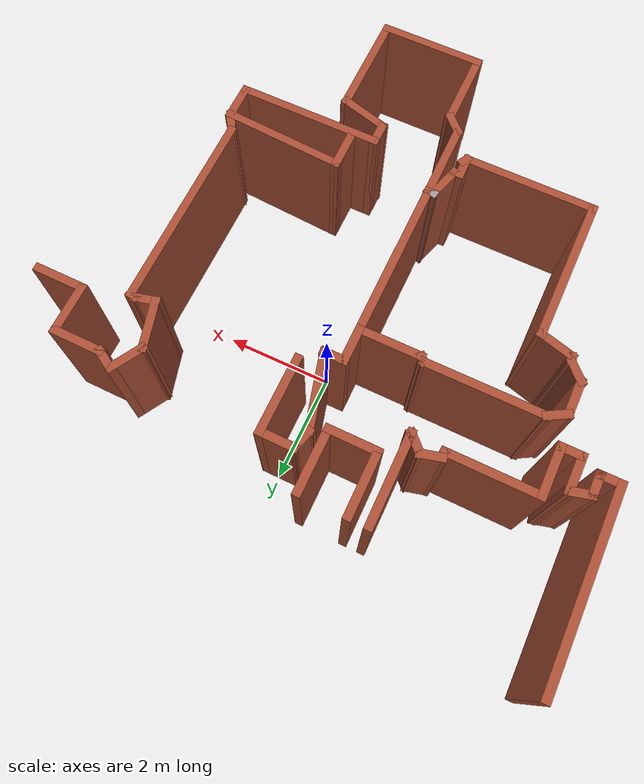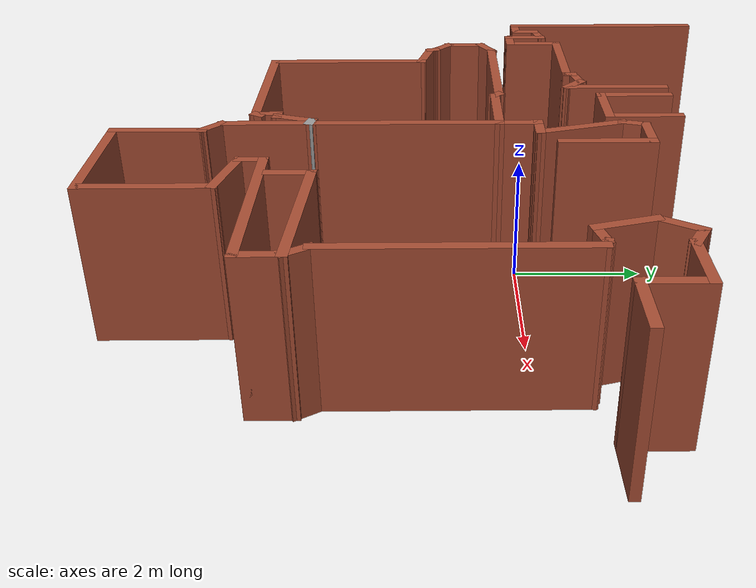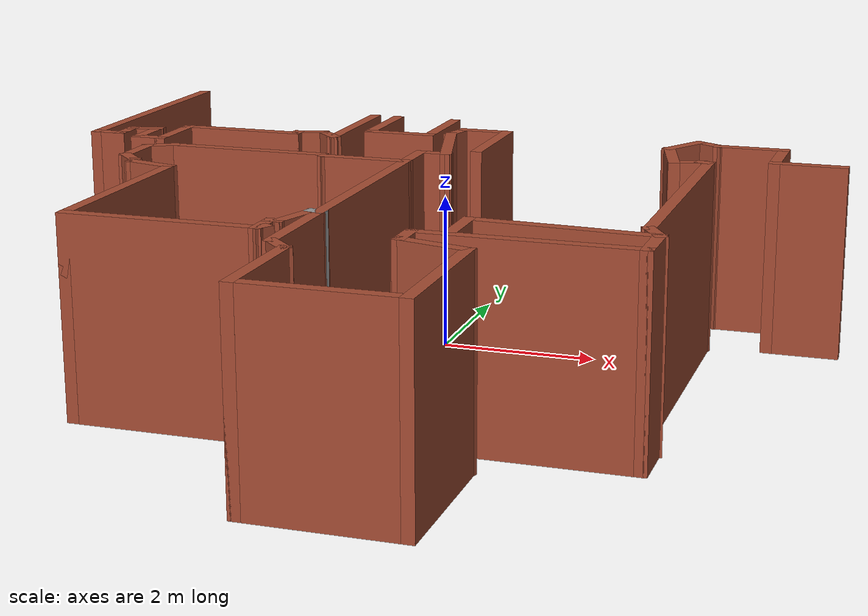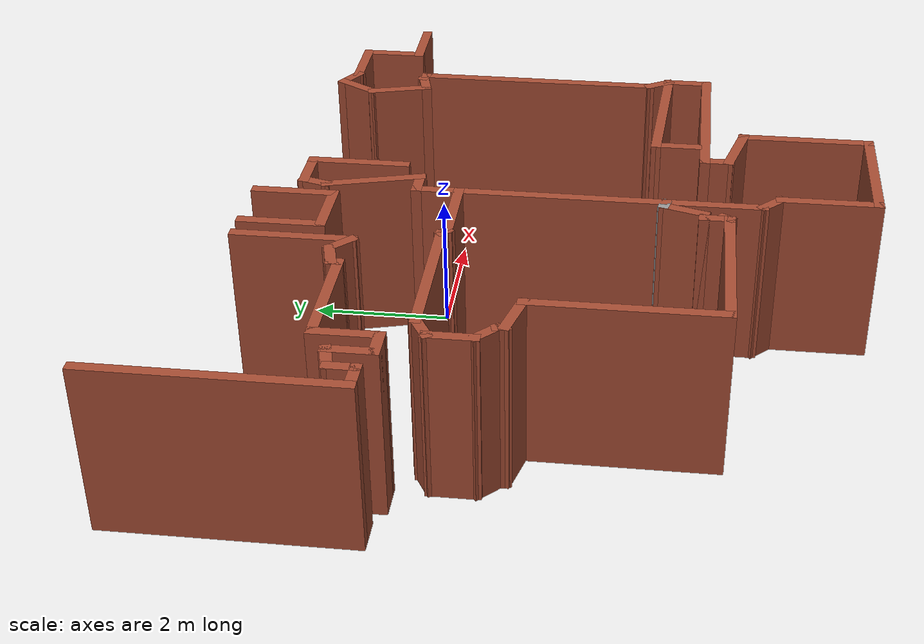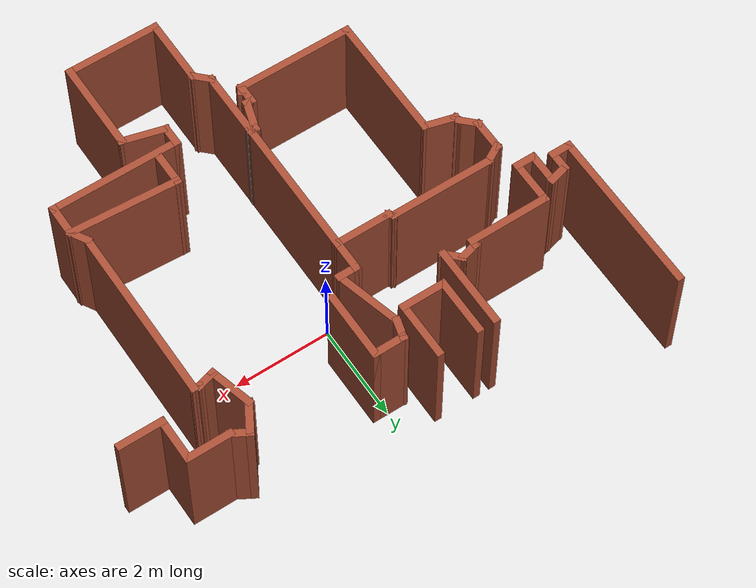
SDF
<sdf version="1.6">
 <model name="map_19">
  <pose>0.347283 1.65481 0 0 -0 0</pose>
  <link name="Wall_100">
   <collision name="Wall_100_Collision">
    <geometry><box><size>0.25 0.15 2.5</size></box></geometry>
    <pose>0 0 1.25 0 -0 0</pose>
   </collision>
   <visual name="Wall_100_Visual">
    <pose>0 0 1.25 0 -0 0</pose>
    <geometry><box><size>0.25 0.15 2.5</size></box></geometry>
    <material>
     <script><uri>file://media/materials/scripts/gazebo.material</uri><name>Gazebo/Grey</name></script>
     <ambient>1 1 1 1</ambient>
    </material>
    <meta><layer>0</layer></meta>
   </visual>
   <pose>-0.844355 -4.84999 0 0 -0 -0.261799</pose>
  </link>
  <link name="Wall_101">
   <collision name="Wall_101_Collision">
    <geometry><box><size>1.5 0.15 2.5</size></box></geometry>
    <pose>0 0 1.25 0 -0 0</pose>
   </collision>
   <visual name="Wall_101_Visual">
    <pose>0 0 1.25 0 -0 0</pose>
    <geometry><box><size>1.5 0.15 2.5</size></box></geometry>
    <material>
     <script><uri>file://media/materials/scripts/gazebo.material</uri><name>Gazebo/Bricks</name></script>
     <ambient>1 1 1 1</ambient>
    </material>
    <meta><layer>0</layer></meta>
   </visual>
   <pose>-0.796059 -5.53794 0 0 -0 -1.5708</pose>
  </link>
  <link name="Wall_102">
   <collision name="Wall_102_Collision">
    <geometry><box><size>0.5 0.15 2.5</size></box></geometry>
    <pose>0 0 1.25 0 -0 0</pose>
   </collision>
   <visual name="Wall_102_Visual">
    <pose>0 0 1.25 0 -0 0</pose>
    <geometry><box><size>0.5 0.15 2.5</size></box></geometry>
    <material>
     <script><uri>file://media/materials/scripts/gazebo.material</uri><name>Gazebo/Bricks</name></script>
     <ambient>1 1 1 1</ambient>
    </material>
    <meta><layer>0</layer></meta>
   </visual>
   <pose>-0.672315 -6.33668 0 0 -0 -0.785398</pose>
  </link>
  <link name="Wall_103">
   <collision name="Wall_103_Collision">
    <geometry><box><size>1.5 0.15 2.5</size></box></geometry>
    <pose>0 0 1.25 0 -0 0</pose>
   </collision>
   <visual name="Wall_103_Visual">
    <pose>0 0 1.25 0 -0 0</pose>
    <geometry><box><size>1.5 0.15 2.5</size></box></geometry>
    <material>
     <script><uri>file://media/materials/scripts/gazebo.material</uri><name>Gazebo/Bricks</name></script>
     <ambient>1 1 1 1</ambient>
    </material>
    <meta><layer>0</layer></meta>
   </visual>
   <pose>-0.548571 -7.13542 0 0 -0 -1.5708</pose>
  </link>
  <link name="Wall_106">
   <collision name="Wall_106_Collision">
    <geometry><box><size>2 0.15 2.5</size></box></geometry>
    <pose>0 0 1.25 0 -0 0</pose>
   </collision>
   <visual name="Wall_106_Visual">
    <pose>0 0 1.25 0 -0 0</pose>
    <geometry><box><size>2 0.15 2.5</size></box></geometry>
    <material>
     <script><uri>file://media/materials/scripts/gazebo.material</uri><name>Gazebo/Bricks</name></script>
     <ambient>1 1 1 1</ambient>
    </material>
    <meta><layer>0</layer></meta>
   </visual>
   <pose>0.376429 -7.81042 0 0 -0 0</pose>
  </link>
  <link name="Wall_107">
   <collision name="Wall_107_Collision">
    <geometry><box><size>2 0.15 2.5</size></box></geometry>
    <pose>0 0 1.25 0 -0 0</pose>
   </collision>
   <visual name="Wall_107_Visual">
    <pose>0 0 1.25 0 -0 0</pose>
    <geometry><box><size>2 0.15 2.5</size></box></geometry>
    <material>
     <script><uri>file://media/materials/scripts/gazebo.material</uri><name>Gazebo/Bricks</name></script>
     <ambient>1 1 1 1</ambient>
    </material>
    <meta><layer>0</layer></meta>
   </visual>
   <pose>1.30143 -6.88542 0 0 -0 1.5708</pose>
  </link>
  <link name="Wall_108">
   <collision name="Wall_108_Collision">
    <geometry><box><size>1 0.15 2.5</size></box></geometry>
    <pose>0 0 1.25 0 -0 0</pose>
   </collision>
   <visual name="Wall_108_Visual">
    <pose>0 0 1.25 0 -0 0</pose>
    <geometry><box><size>1 0.15 2.5</size></box></geometry>
    <material>
     <script><uri>file://media/materials/scripts/gazebo.material</uri><name>Gazebo/Bricks</name></script>
     <ambient>1 1 1 1</ambient>
    </material>
    <meta><layer>0</layer></meta>
   </visual>
   <pose>0.89091 -5.85042 0 0 -0 2.87979</pose>
  </link>
  <link name="Wall_109">
   <collision name="Wall_109_Collision">
    <geometry><box><size>0.5 0.15 2.5</size></box></geometry>
    <pose>0 0 1.25 0 -0 0</pose>
   </collision>
   <visual name="Wall_109_Visual">
    <pose>0 0 1.25 0 -0 0</pose>
    <geometry><box><size>0.5 0.15 2.5</size></box></geometry>
    <material>
     <script><uri>file://media/materials/scripts/gazebo.material</uri><name>Gazebo/Bricks</name></script>
     <ambient>1 1 1 1</ambient>
    </material>
    <meta><layer>0</layer></meta>
   </visual>
   <pose>0.480392 -5.56543 0 0 -0 1.5708</pose>
  </link>
  <link name="Wall_110">
   <collision name="Wall_110_Collision">
    <geometry><box><size>2.75 0.15 2.5</size></box></geometry>
    <pose>0 0 1.25 0 -0 0</pose>
   </collision>
   <visual name="Wall_110_Visual">
    <pose>0 0 1.25 0 -0 0</pose>
    <geometry><box><size>2.75 0.15 2.5</size></box></geometry>
    <material>
     <script><uri>file://media/materials/scripts/gazebo.material</uri><name>Gazebo/Bricks</name></script>
     <ambient>1 1 1 1</ambient>
    </material>
    <meta><layer>0</layer></meta>
   </visual>
   <pose>1.78039 -5.39043 0 0 -0 0</pose>
  </link>
  <link name="Wall_113">
   <collision name="Wall_113_Collision">
    <geometry><box><size>0.75 0.15 2.5</size></box></geometry>
    <pose>0 0 1.25 0 -0 0</pose>
   </collision>
   <visual name="Wall_113_Visual">
    <pose>0 0 1.25 0 -0 0</pose>
    <geometry><box><size>0.75 0.15 2.5</size></box></geometry>
    <material>
     <script><uri>file://media/materials/scripts/gazebo.material</uri><name>Gazebo/Bricks</name></script>
     <ambient>1 1 1 1</ambient>
    </material>
    <meta><layer>0</layer></meta>
   </visual>
   <pose>3.08039 -5.09043 0 0 -0 1.5708</pose>
  </link>
  <link name="Wall_114">
   <collision name="Wall_114_Collision">
    <geometry><box><size>0.5 0.15 2.5</size></box></geometry>
    <pose>0 0 1.25 0 -0 0</pose>
   </collision>
   <visual name="Wall_114_Visual">
    <pose>0 0 1.25 0 -0 0</pose>
    <geometry><box><size>0.5 0.15 2.5</size></box></geometry>
    <material>
     <script><uri>file://media/materials/scripts/gazebo.material</uri><name>Gazebo/Bricks</name></script>
     <ambient>1 1 1 1</ambient>
    </material>
    <meta><layer>0</layer></meta>
   </visual>
   <pose>2.99289 -4.63887 0 0 -0 2.0944</pose>
  </link>
  <link name="Wall_115">
   <collision name="Wall_115_Collision">
    <geometry><box><size>3.75 0.15 2.5</size></box></geometry>
    <pose>0 0 1.25 0 -0 0</pose>
   </collision>
   <visual name="Wall_115_Visual">
    <pose>0 0 1.25 0 -0 0</pose>
    <geometry><box><size>3.75 0.15 2.5</size></box></geometry>
    <material>
     <script><uri>file://media/materials/scripts/gazebo.material</uri><name>Gazebo/Bricks</name></script>
     <ambient>1 1 1 1</ambient>
    </material>
    <meta><layer>0</layer></meta>
   </visual>
   <pose>2.90539 -2.68732 0 0 -0 1.5708</pose>
  </link>
  <link name="Wall_116">
   <collision name="Wall_116_Collision">
    <geometry><box><size>0.25 0.15 2.5</size></box></geometry>
    <pose>0 0 1.25 0 -0 0</pose>
   </collision>
   <visual name="Wall_116_Visual">
    <pose>0 0 1.25 0 -0 0</pose>
    <geometry><box><size>0.25 0.15 2.5</size></box></geometry>
    <material>
     <script><uri>file://media/materials/scripts/gazebo.material</uri><name>Gazebo/Bricks</name></script>
     <ambient>1 1 1 1</ambient>
    </material>
    <meta><layer>0</layer></meta>
   </visual>
   <pose>2.8571 -0.874376 0 0 -0 2.87979</pose>
  </link>
  <link name="Wall_117">
   <collision name="Wall_117_Collision">
    <geometry><box><size>0.5 0.15 2.5</size></box></geometry>
    <pose>0 0 1.25 0 -0 0</pose>
   </collision>
   <visual name="Wall_117_Visual">
    <pose>0 0 1.25 0 -0 0</pose>
    <geometry><box><size>0.5 0.15 2.5</size></box></geometry>
    <material>
     <script><uri>file://media/materials/scripts/gazebo.material</uri><name>Gazebo/Bricks</name></script>
     <ambient>1 1 1 1</ambient>
    </material>
    <meta><layer>0</layer></meta>
   </visual>
   <pose>2.63976 -0.906728 0 0 -0 -2.87979</pose>
  </link>
  <link name="Wall_118">
   <collision name="Wall_118_Collision">
    <geometry><box><size>1 0.15 2.5</size></box></geometry>
    <pose>0 0 1.25 0 -0 0</pose>
   </collision>
   <visual name="Wall_118_Visual">
    <pose>0 0 1.25 0 -0 0</pose>
    <geometry><box><size>1 0.15 2.5</size></box></geometry>
    <material>
     <script><uri>file://media/materials/scripts/gazebo.material</uri><name>Gazebo/Bricks</name></script>
     <ambient>1 1 1 1</ambient>
    </material>
    <meta><layer>0</layer></meta>
   </visual>
   <pose>2.36073 -0.541503 0 0 -0 1.8326</pose>
  </link>
  <link name="Wall_119">
   <collision name="Wall_119_Collision">
    <geometry><box><size>0.75 0.15 2.5</size></box></geometry>
    <pose>0 0 1.25 0 -0 0</pose>
   </collision>
   <visual name="Wall_119_Visual">
    <pose>0 0 1.25 0 -0 0</pose>
    <geometry><box><size>0.75 0.15 2.5</size></box></geometry>
    <material>
     <script><uri>file://media/materials/scripts/gazebo.material</uri><name>Gazebo/Bricks</name></script>
     <ambient>1 1 1 1</ambient>
    </material>
    <meta><layer>0</layer></meta>
   </visual>
   <pose>2.40073 0.128823 0 0 -0 1.0472</pose>
  </link>
  <link name="Wall_120">
   <collision name="Wall_120_Collision">
    <geometry><box><size>0.5 0.15 2.5</size></box></geometry>
    <pose>0 0 1.25 0 -0 0</pose>
   </collision>
   <visual name="Wall_120_Visual">
    <pose>0 0 1.25 0 -0 0</pose>
    <geometry><box><size>0.5 0.15 2.5</size></box></geometry>
    <material>
     <script><uri>file://media/materials/scripts/gazebo.material</uri><name>Gazebo/Bricks</name></script>
     <ambient>1 1 1 1</ambient>
    </material>
    <meta><layer>0</layer></meta>
   </visual>
   <pose>2.70228 0.301131 0 0 -0 -0.523599</pose>
  </link>
  <link name="Wall_123">
   <collision name="Wall_123_Collision">
    <geometry><box><size>1 0.15 2.5</size></box></geometry>
    <pose>0 0 1.25 0 -0 0</pose>
   </collision>
   <visual name="Wall_123_Visual">
    <pose>0 0 1.25 0 -0 0</pose>
    <geometry><box><size>1 0.15 2.5</size></box></geometry>
    <material>
     <script><uri>file://media/materials/scripts/gazebo.material</uri><name>Gazebo/Bricks</name></script>
     <ambient>1 1 1 1</ambient>
    </material>
    <meta><layer>0</layer></meta>
   </visual>
   <pose>3.27884 0.213631 0 0 -0 0</pose>
  </link>
  <link name="Wall_124">
   <collision name="Wall_124_Collision">
    <geometry><box><size>1 0.15 2.5</size></box></geometry>
    <pose>0 0 1.25 0 -0 0</pose>
   </collision>
   <visual name="Wall_124_Visual">
    <pose>0 0 1.25 0 -0 0</pose>
    <geometry><box><size>1 0.15 2.5</size></box></geometry>
    <material>
     <script><uri>file://media/materials/scripts/gazebo.material</uri><name>Gazebo/Bricks</name></script>
     <ambient>1 1 1 1</ambient>
    </material>
    <meta><layer>0</layer></meta>
   </visual>
   <pose>3.70384 -0.21137 0 0 -0 -1.5708</pose>
  </link>
  <link name="Wall_125">
   <collision name="Wall_125_Collision">
    <geometry><box><size>1 0.15 2.5</size></box></geometry>
    <pose>0 0 1.25 0 -0 0</pose>
   </collision>
   <visual name="Wall_125_Visual">
    <pose>0 0 1.25 0 -0 0</pose>
    <geometry><box><size>1 0.15 2.5</size></box></geometry>
    <material>
     <script><uri>file://media/materials/scripts/gazebo.material</uri><name>Gazebo/Bricks</name></script>
     <ambient>1 1 1 1</ambient>
    </material>
    <meta><layer>0</layer></meta>
   </visual>
   <pose>4.12884 -0.636369 0 0 -0 0</pose>
  </link>
  <link name="Wall_176">
   <collision name="Wall_176_Collision">
    <geometry><box><size>0.75 0.15 2.5</size></box></geometry>
    <pose>0 0 1.25 0 -0 0</pose>
   </collision>
   <visual name="Wall_176_Visual">
    <pose>0 0 1.25 0 -0 0</pose>
    <geometry><box><size>0.75 0.15 2.5</size></box></geometry>
    <material>
     <script><uri>file://media/materials/scripts/gazebo.material</uri><name>Gazebo/Bricks</name></script>
     <ambient>1 1 1 1</ambient>
    </material>
    <meta><layer>0</layer></meta>
   </visual>
   <pose>-0.400572 0.301042 0 0 -0 0</pose>
  </link>
  <link name="Wall_177">
   <collision name="Wall_177_Collision">
    <geometry><box><size>1.5 0.15 2.5</size></box></geometry>
    <pose>0 0 1.25 0 -0 0</pose>
   </collision>
   <visual name="Wall_177_Visual">
    <pose>0 0 1.25 0 -0 0</pose>
    <geometry><box><size>1.5 0.15 2.5</size></box></geometry>
    <material>
     <script><uri>file://media/materials/scripts/gazebo.material</uri><name>Gazebo/Bricks</name></script>
     <ambient>1 1 1 1</ambient>
    </material>
    <meta><layer>0</layer></meta>
   </visual>
   <pose>-0.100572 -0.373958 0 0 -0 -1.5708</pose>
  </link>
  <link name="Wall_179">
   <collision name="Wall_179_Collision">
    <geometry><box><size>0.75 0.15 2.5</size></box></geometry>
    <pose>0 0 1.25 0 -0 0</pose>
   </collision>
   <visual name="Wall_179_Visual">
    <pose>0 0 1.25 0 -0 0</pose>
    <geometry><box><size>0.75 0.15 2.5</size></box></geometry>
    <material>
     <script><uri>file://media/materials/scripts/gazebo.material</uri><name>Gazebo/Bricks</name></script>
     <ambient>1 1 1 1</ambient>
    </material>
    <meta><layer>0</layer></meta>
   </visual>
   <pose>0.904686 -4.96508 0 0 -0 -1.5708</pose>
  </link>
  <link name="Wall_182">
   <collision name="Wall_182_Collision">
    <geometry><box><size>2.32931 0.15 2.5</size></box></geometry>
    <pose>0 0 1.25 0 -0 0</pose>
   </collision>
   <visual name="Wall_182_Visual">
    <pose>0 0 1.25 0 -0 0</pose>
    <geometry><box><size>2.32931 0.15 2.5</size></box></geometry>
    <material>
     <script><uri>file://media/materials/scripts/gazebo.material</uri><name>Gazebo/Bricks</name></script>
     <ambient>1 1 1 1</ambient>
    </material>
    <meta><layer>0</layer></meta>
   </visual>
   <pose>1.99254 -4.72775 0 0 -0 -0.057547</pose>
  </link>
  <link name="Wall_184">
   <collision name="Wall_184_Collision">
    <geometry><box><size>3.07191 0.15 2.5</size></box></geometry>
    <pose>0 0 1.25 0 -0 0</pose>
   </collision>
   <visual name="Wall_184_Visual">
    <pose>0 0 1.25 0 -0 0</pose>
    <geometry><box><size>3.07191 0.15 2.5</size></box></geometry>
    <material>
     <script><uri>file://media/materials/scripts/gazebo.material</uri><name>Gazebo/Bricks</name></script>
     <ambient>1 1 1 1</ambient>
    </material>
    <meta><layer>0</layer></meta>
   </visual>
   <pose>-0.793906 -3.40198 0 0 -0 -1.57227</pose>
  </link>
  <link name="Wall_35">
   <collision name="Wall_35_Collision">
    <geometry><box><size>3.5 0.15 2.5</size></box></geometry>
    <pose>0 0 1.25 0 -0 0</pose>
   </collision>
   <visual name="Wall_35_Visual">
    <pose>0 0 1.25 0 -0 0</pose>
    <geometry><box><size>3.5 0.15 2.5</size></box></geometry>
    <material>
     <script><uri>file://media/materials/scripts/gazebo.material</uri><name>Gazebo/Bricks</name></script>
     <ambient>1 1 1 1</ambient>
    </material>
    <meta><layer>0</layer></meta>
   </visual>
   <pose>-5.47421 0.342356 0 0 -0 -1.5708</pose>
  </link>
  <link name="Wall_36">
   <collision name="Wall_36_Collision">
    <geometry><box><size>0.5 0.15 2.5</size></box></geometry>
    <pose>0 0 1.25 0 -0 0</pose>
   </collision>
   <visual name="Wall_36_Visual">
    <pose>0 0 1.25 0 -0 0</pose>
    <geometry><box><size>0.5 0.15 2.5</size></box></geometry>
    <material>
     <script><uri>file://media/materials/scripts/gazebo.material</uri><name>Gazebo/Bricks</name></script>
     <ambient>1 1 1 1</ambient>
    </material>
    <meta><layer>0</layer></meta>
   </visual>
   <pose>-5.29921 -1.33264 0 0 -0 0</pose>
  </link>
  <link name="Wall_37">
   <collision name="Wall_37_Collision">
    <geometry><box><size>0.5 0.15 2.5</size></box></geometry>
    <pose>0 0 1.25 0 -0 0</pose>
   </collision>
   <visual name="Wall_37_Visual">
    <pose>0 0 1.25 0 -0 0</pose>
    <geometry><box><size>0.5 0.15 2.5</size></box></geometry>
    <material>
     <script><uri>file://media/materials/scripts/gazebo.material</uri><name>Gazebo/Bricks</name></script>
     <ambient>1 1 1 1</ambient>
    </material>
    <meta><layer>0</layer></meta>
   </visual>
   <pose>-5.12421 -1.15764 0 0 -0 1.5708</pose>
  </link>
  <link name="Wall_42">
   <collision name="Wall_42_Collision">
    <geometry><box><size>0.5 0.15 2.5</size></box></geometry>
    <pose>0 0 1.25 0 -0 0</pose>
   </collision>
   <visual name="Wall_42_Visual">
    <pose>0 0 1.25 0 -0 0</pose>
    <geometry><box><size>0.5 0.15 2.5</size></box></geometry>
    <material>
     <script><uri>file://media/materials/scripts/gazebo.material</uri><name>Gazebo/Bricks</name></script>
     <ambient>1 1 1 1</ambient>
    </material>
    <meta><layer>0</layer></meta>
   </visual>
   <pose>-4.95517 -0.93735 0 0 -0 0.261799</pose>
  </link>
  <link name="Wall_43">
   <collision name="Wall_43_Collision">
    <geometry><box><size>0.75 0.15 2.5</size></box></geometry>
    <pose>0 0 1.25 0 -0 0</pose>
   </collision>
   <visual name="Wall_43_Visual">
    <pose>0 0 1.25 0 -0 0</pose>
    <geometry><box><size>0.75 0.15 2.5</size></box></geometry>
    <material>
     <script><uri>file://media/materials/scripts/gazebo.material</uri><name>Gazebo/Bricks</name></script>
     <ambient>1 1 1 1</ambient>
    </material>
    <meta><layer>0</layer></meta>
   </visual>
   <pose>-4.78613 -1.19206 0 0 -0 -1.5708</pose>
  </link>
  <link name="Wall_44">
   <collision name="Wall_44_Collision">
    <geometry><box><size>0.5 0.15 2.5</size></box></geometry>
    <pose>0 0 1.25 0 -0 0</pose>
   </collision>
   <visual name="Wall_44_Visual">
    <pose>0 0 1.25 0 -0 0</pose>
    <geometry><box><size>0.5 0.15 2.5</size></box></geometry>
    <material>
     <script><uri>file://media/materials/scripts/gazebo.material</uri><name>Gazebo/Bricks</name></script>
     <ambient>1 1 1 1</ambient>
    </material>
    <meta><layer>0</layer></meta>
   </visual>
   <pose>-4.61113 -1.49206 0 0 -0 0</pose>
  </link>
  <link name="Wall_45">
   <collision name="Wall_45_Collision">
    <geometry><box><size>1 0.15 2.5</size></box></geometry>
    <pose>0 0 1.25 0 -0 0</pose>
   </collision>
   <visual name="Wall_45_Visual">
    <pose>0 0 1.25 0 -0 0</pose>
    <geometry><box><size>1 0.15 2.5</size></box></geometry>
    <material>
     <script><uri>file://media/materials/scripts/gazebo.material</uri><name>Gazebo/Bricks</name></script>
     <ambient>1 1 1 1</ambient>
    </material>
    <meta><layer>0</layer></meta>
   </visual>
   <pose>-4.43613 -1.06706 0 0 -0 1.5708</pose>
  </link>
  <link name="Wall_52">
   <collision name="Wall_52_Collision">
    <geometry><box><size>1.75 0.15 2.5</size></box></geometry>
    <pose>0 0 1.25 0 -0 0</pose>
   </collision>
   <visual name="Wall_52_Visual">
    <pose>0 0 1.25 0 -0 0</pose>
    <geometry><box><size>1.75 0.15 2.5</size></box></geometry>
    <material>
     <script><uri>file://media/materials/scripts/gazebo.material</uri><name>Gazebo/Bricks</name></script>
     <ambient>1 1 1 1</ambient>
    </material>
    <meta><layer>0</layer></meta>
   </visual>
   <pose>-3.63613 -0.642057 0 0 -0 0</pose>
  </link>
  <link name="Wall_53">
   <collision name="Wall_53_Collision">
    <geometry><box><size>0.25 0.15 2.5</size></box></geometry>
    <pose>0 0 1.25 0 -0 0</pose>
   </collision>
   <visual name="Wall_53_Visual">
    <pose>0 0 1.25 0 -0 0</pose>
    <geometry><box><size>0.25 0.15 2.5</size></box></geometry>
    <material>
     <script><uri>file://media/materials/scripts/gazebo.material</uri><name>Gazebo/Bricks</name></script>
     <ambient>1 1 1 1</ambient>
    </material>
    <meta><layer>0</layer></meta>
   </visual>
   <pose>-2.83613 -0.592057 0 0 -0 1.5708</pose>
  </link>
  <link name="Wall_54">
   <collision name="Wall_54_Collision">
    <geometry><box><size>0.5 0.15 2.5</size></box></geometry>
    <pose>0 0 1.25 0 -0 0</pose>
   </collision>
   <visual name="Wall_54_Visual">
    <pose>0 0 1.25 0 -0 0</pose>
    <geometry><box><size>0.5 0.15 2.5</size></box></geometry>
    <material>
     <script><uri>file://media/materials/scripts/gazebo.material</uri><name>Gazebo/Bricks</name></script>
     <ambient>1 1 1 1</ambient>
    </material>
    <meta><layer>0</layer></meta>
   </visual>
   <pose>-2.6671 -0.496764 0 0 -0 0.261799</pose>
  </link>
  <link name="Wall_55">
   <collision name="Wall_55_Collision">
    <geometry><box><size>0.5 0.15 2.5</size></box></geometry>
    <pose>0 0 1.25 0 -0 0</pose>
   </collision>
   <visual name="Wall_55_Visual">
    <pose>0 0 1.25 0 -0 0</pose>
    <geometry><box><size>0.5 0.15 2.5</size></box></geometry>
    <material>
     <script><uri>file://media/materials/scripts/gazebo.material</uri><name>Gazebo/Bricks</name></script>
     <ambient>1 1 1 1</ambient>
    </material>
    <meta><layer>0</layer></meta>
   </visual>
   <pose>-2.37432 -0.575214 0 0 -0 -0.785398</pose>
  </link>
  <link name="Wall_56">
   <collision name="Wall_56_Collision">
    <geometry><box><size>1.75 0.15 2.5</size></box></geometry>
    <pose>0 0 1.25 0 -0 0</pose>
   </collision>
   <visual name="Wall_56_Visual">
    <pose>0 0 1.25 0 -0 0</pose>
    <geometry><box><size>1.75 0.15 2.5</size></box></geometry>
    <material>
     <script><uri>file://media/materials/scripts/gazebo.material</uri><name>Gazebo/Bricks</name></script>
     <ambient>1 1 1 1</ambient>
    </material>
    <meta><layer>0</layer></meta>
   </visual>
   <pose>-2.25057 0.101042 0 0 -0 1.5708</pose>
  </link>
  <link name="Wall_58">
   <collision name="Wall_58_Collision">
    <geometry><box><size>1.25 0.15 2.5</size></box></geometry>
    <pose>0 0 1.25 0 -0 0</pose>
   </collision>
   <visual name="Wall_58_Visual">
    <pose>0 0 1.25 0 -0 0</pose>
    <geometry><box><size>1.25 0.15 2.5</size></box></geometry>
    <material>
     <script><uri>file://media/materials/scripts/gazebo.material</uri><name>Gazebo/Bricks</name></script>
     <ambient>1 1 1 1</ambient>
    </material>
    <meta><layer>0</layer></meta>
   </visual>
   <pose>-1.90057 0.351043 0 0 -0 -1.5708</pose>
  </link>
  <link name="Wall_59">
   <collision name="Wall_59_Collision">
    <geometry><box><size>1 0.15 2.5</size></box></geometry>
    <pose>0 0 1.25 0 -0 0</pose>
   </collision>
   <visual name="Wall_59_Visual">
    <pose>0 0 1.25 0 -0 0</pose>
    <geometry><box><size>1 0.15 2.5</size></box></geometry>
    <material>
     <script><uri>file://media/materials/scripts/gazebo.material</uri><name>Gazebo/Bricks</name></script>
     <ambient>1 1 1 1</ambient>
    </material>
    <meta><layer>0</layer></meta>
   </visual>
   <pose>-1.47557 -0.198958 0 0 -0 0</pose>
  </link>
  <link name="Wall_63">
   <collision name="Wall_63_Collision">
    <geometry><box><size>1.25 0.15 2.5</size></box></geometry>
    <pose>0 0 1.25 0 -0 0</pose>
   </collision>
   <visual name="Wall_63_Visual">
    <pose>0 0 1.25 0 -0 0</pose>
    <geometry><box><size>1.25 0.15 2.5</size></box></geometry>
    <material>
     <script><uri>file://media/materials/scripts/gazebo.material</uri><name>Gazebo/Bricks</name></script>
     <ambient>1 1 1 1</ambient>
    </material>
    <meta><layer>0</layer></meta>
   </visual>
   <pose>-1.05057 0.351043 0 0 -0 1.5708</pose>
  </link>
  <link name="Wall_73">
   <collision name="Wall_73_Collision">
    <geometry><box><size>0.5 0.15 2.5</size></box></geometry>
    <pose>0 0 1.25 0 -0 0</pose>
   </collision>
   <visual name="Wall_73_Visual">
    <pose>0 0 1.25 0 -0 0</pose>
    <geometry><box><size>0.5 0.15 2.5</size></box></geometry>
    <material>
     <script><uri>file://media/materials/scripts/gazebo.material</uri><name>Gazebo/Bricks</name></script>
     <ambient>1 1 1 1</ambient>
    </material>
    <meta><layer>0</layer></meta>
   </visual>
   <pose>-0.745865 0.132005 0 0 -0 -1.8326</pose>
  </link>
  <link name="Wall_80">
   <collision name="Wall_80_Collision">
    <geometry><box><size>1.5 0.15 2.5</size></box></geometry>
    <pose>0 0 1.25 0 -0 0</pose>
   </collision>
   <visual name="Wall_80_Visual">
    <pose>0 0 1.25 0 -0 0</pose>
    <geometry><box><size>1.5 0.15 2.5</size></box></geometry>
    <material>
     <script><uri>file://media/materials/scripts/gazebo.material</uri><name>Gazebo/Bricks</name></script>
     <ambient>1 1 1 1</ambient>
    </material>
    <meta><layer>0</layer></meta>
   </visual>
   <pose>-0.616456 -0.689032 0 0 -0 -1.309</pose>
  </link>
  <link name="Wall_81">
   <collision name="Wall_81_Collision">
    <geometry><box><size>0.5 0.15 2.5</size></box></geometry>
    <pose>0 0 1.25 0 -0 0</pose>
   </collision>
   <visual name="Wall_81_Visual">
    <pose>0 0 1.25 0 -0 0</pose>
    <geometry><box><size>0.5 0.15 2.5</size></box></geometry>
    <material>
     <script><uri>file://media/materials/scripts/gazebo.material</uri><name>Gazebo/Bricks</name></script>
     <ambient>1 1 1 1</ambient>
    </material>
    <meta><layer>0</layer></meta>
   </visual>
   <pose>-0.616753 -1.34103 0 0 -0 3.14159</pose>
  </link>
  <link name="Wall_82">
   <collision name="Wall_82_Collision">
    <geometry><box><size>0.75 0.15 2.5</size></box></geometry>
    <pose>0 0 1.25 0 -0 0</pose>
   </collision>
   <visual name="Wall_82_Visual">
    <pose>0 0 1.25 0 -0 0</pose>
    <geometry><box><size>0.75 0.15 2.5</size></box></geometry>
    <material>
     <script><uri>file://media/materials/scripts/gazebo.material</uri><name>Gazebo/Bricks</name></script>
     <ambient>1 1 1 1</ambient>
    </material>
    <meta><layer>0</layer></meta>
   </visual>
   <pose>-0.791753 -1.64103 0 0 -0 -1.5708</pose>
  </link>
  <link name="Wall_83">
   <collision name="Wall_83_Collision">
    <geometry><box><size>1.25 0.15 2.5</size></box></geometry>
    <pose>0 0 1.25 0 -0 0</pose>
   </collision>
   <visual name="Wall_83_Visual">
    <pose>0 0 1.25 0 -0 0</pose>
    <geometry><box><size>1.25 0.15 2.5</size></box></geometry>
    <material>
     <script><uri>file://media/materials/scripts/gazebo.material</uri><name>Gazebo/Bricks</name></script>
     <ambient>1 1 1 1</ambient>
    </material>
    <meta><layer>0</layer></meta>
   </visual>
   <pose>-1.34175 -1.94103 0 0 -0 3.14159</pose>
  </link>
  <link name="Wall_84">
   <collision name="Wall_84_Collision">
    <geometry><box><size>0.25 0.15 2.5</size></box></geometry>
    <pose>0 0 1.25 0 -0 0</pose>
   </collision>
   <visual name="Wall_84_Visual">
    <pose>0 0 1.25 0 -0 0</pose>
    <geometry><box><size>0.25 0.15 2.5</size></box></geometry>
    <material>
     <script><uri>file://media/materials/scripts/gazebo.material</uri><name>Gazebo/Bricks</name></script>
     <ambient>1 1 1 1</ambient>
    </material>
    <meta><layer>0</layer></meta>
   </visual>
   <pose>-1.92711 -1.90568 0 0 -0 2.35619</pose>
  </link>
  <link name="Wall_85">
   <collision name="Wall_85_Collision">
    <geometry><box><size>2.25 0.15 2.5</size></box></geometry>
    <pose>0 0 1.25 0 -0 0</pose>
   </collision>
   <visual name="Wall_85_Visual">
    <pose>0 0 1.25 0 -0 0</pose>
    <geometry><box><size>2.25 0.15 2.5</size></box></geometry>
    <material>
     <script><uri>file://media/materials/scripts/gazebo.material</uri><name>Gazebo/Bricks</name></script>
     <ambient>1 1 1 1</ambient>
    </material>
    <meta><layer>0</layer></meta>
   </visual>
   <pose>-3.01246 -1.87032 0 0 -0 3.14159</pose>
  </link>
  <link name="Wall_86">
   <collision name="Wall_86_Collision">
    <geometry><box><size>0.5 0.15 2.5</size></box></geometry>
    <pose>0 0 1.25 0 -0 0</pose>
   </collision>
   <visual name="Wall_86_Visual">
    <pose>0 0 1.25 0 -0 0</pose>
    <geometry><box><size>0.5 0.15 2.5</size></box></geometry>
    <material>
     <script><uri>file://media/materials/scripts/gazebo.material</uri><name>Gazebo/Bricks</name></script>
     <ambient>1 1 1 1</ambient>
    </material>
    <meta><layer>0</layer></meta>
   </visual>
   <pose>-4.21402 -1.95782 0 0 -0 -2.61799</pose>
  </link>
  <link name="Wall_87">
   <collision name="Wall_87_Collision">
    <geometry><box><size>0.75 0.15 2.5</size></box></geometry>
    <pose>0 0 1.25 0 -0 0</pose>
   </collision>
   <visual name="Wall_87_Visual">
    <pose>0 0 1.25 0 -0 0</pose>
    <geometry><box><size>0.75 0.15 2.5</size></box></geometry>
    <material>
     <script><uri>file://media/materials/scripts/gazebo.material</uri><name>Gazebo/Bricks</name></script>
     <ambient>1 1 1 1</ambient>
    </material>
    <meta><layer>0</layer></meta>
   </visual>
   <pose>-4.36557 -2.34532 0 0 -0 -1.5708</pose>
  </link>
  <link name="Wall_88">
   <collision name="Wall_88_Collision">
    <geometry><box><size>0.5 0.15 2.5</size></box></geometry>
    <pose>0 0 1.25 0 -0 0</pose>
   </collision>
   <visual name="Wall_88_Visual">
    <pose>0 0 1.25 0 -0 0</pose>
    <geometry><box><size>0.5 0.15 2.5</size></box></geometry>
    <material>
     <script><uri>file://media/materials/scripts/gazebo.material</uri><name>Gazebo/Bricks</name></script>
     <ambient>1 1 1 1</ambient>
    </material>
    <meta><layer>0</layer></meta>
   </visual>
   <pose>-4.24183 -2.76906 0 0 -0 -0.785398</pose>
  </link>
  <link name="Wall_89">
   <collision name="Wall_89_Collision">
    <geometry><box><size>0.25 0.15 2.5</size></box></geometry>
    <pose>0 0 1.25 0 -0 0</pose>
   </collision>
   <visual name="Wall_89_Visual">
    <pose>0 0 1.25 0 -0 0</pose>
    <geometry><box><size>0.25 0.15 2.5</size></box></geometry>
    <material>
     <script><uri>file://media/materials/scripts/gazebo.material</uri><name>Gazebo/Bricks</name></script>
     <ambient>1 1 1 1</ambient>
    </material>
    <meta><layer>0</layer></meta>
   </visual>
   <pose>-4.10514 -2.9411 0 0 -0 -1.309</pose>
  </link>
  <link name="Wall_90">
   <collision name="Wall_90_Collision">
    <geometry><box><size>0.75 0.15 2.5</size></box></geometry>
    <pose>0 0 1.25 0 -0 0</pose>
   </collision>
   <visual name="Wall_90_Visual">
    <pose>0 0 1.25 0 -0 0</pose>
    <geometry><box><size>0.75 0.15 2.5</size></box></geometry>
    <material>
     <script><uri>file://media/materials/scripts/gazebo.material</uri><name>Gazebo/Bricks</name></script>
     <ambient>1 1 1 1</ambient>
    </material>
    <meta><layer>0</layer></meta>
   </visual>
   <pose>-3.80242 -3.06705 0 0 -0 -0.261799</pose>
  </link>
  <link name="Wall_91">
   <collision name="Wall_91_Collision">
    <geometry><box><size>2.75 0.15 2.5</size></box></geometry>
    <pose>0 0 1.25 0 -0 0</pose>
   </collision>
   <visual name="Wall_91_Visual">
    <pose>0 0 1.25 0 -0 0</pose>
    <geometry><box><size>2.75 0.15 2.5</size></box></geometry>
    <material>
     <script><uri>file://media/materials/scripts/gazebo.material</uri><name>Gazebo/Bricks</name></script>
     <ambient>1 1 1 1</ambient>
    </material>
    <meta><layer>0</layer></meta>
   </visual>
   <pose>-3.51265 -4.44469 0 0 -0 -1.5708</pose>
  </link>
  <link name="Wall_92">
   <collision name="Wall_92_Collision">
    <geometry><box><size>2.5 0.15 2.5</size></box></geometry>
    <pose>0 0 1.25 0 -0 0</pose>
   </collision>
   <visual name="Wall_92_Visual">
    <pose>0 0 1.25 0 -0 0</pose>
    <geometry><box><size>2.5 0.15 2.5</size></box></geometry>
    <material>
     <script><uri>file://media/materials/scripts/gazebo.material</uri><name>Gazebo/Bricks</name></script>
     <ambient>1 1 1 1</ambient>
    </material>
    <meta><layer>0</layer></meta>
   </visual>
   <pose>-2.33765 -5.74469 0 0 -0 0</pose>
  </link>
  <link name="Wall_93">
   <collision name="Wall_93_Collision">
    <geometry><box><size>0.25 0.15 2.5</size></box></geometry>
    <pose>0 0 1.25 0 -0 0</pose>
   </collision>
   <visual name="Wall_93_Visual">
    <pose>0 0 1.25 0 -0 0</pose>
    <geometry><box><size>0.25 0.15 2.5</size></box></geometry>
    <material>
     <script><uri>file://media/materials/scripts/gazebo.material</uri><name>Gazebo/Bricks</name></script>
     <ambient>1 1 1 1</ambient>
    </material>
    <meta><layer>0</layer></meta>
   </visual>
   <pose>-1.13765 -5.70139 0 0 -0 1.0472</pose>
  </link>
  <link name="Wall_95">
   <collision name="Wall_95_Collision">
    <geometry><box><size>0.25 0.15 2.5</size></box></geometry>
    <pose>0 0 1.25 0 -0 0</pose>
   </collision>
   <visual name="Wall_95_Visual">
    <pose>0 0 1.25 0 -0 0</pose>
    <geometry><box><size>0.25 0.15 2.5</size></box></geometry>
    <material>
     <script><uri>file://media/materials/scripts/gazebo.material</uri><name>Gazebo/Bricks</name></script>
     <ambient>1 1 1 1</ambient>
    </material>
    <meta><layer>0</layer></meta>
   </visual>
   <pose>-0.842651 -4.83705 0 0 -0 0</pose>
  </link>
  <link name="Wall_97">
   <collision name="Wall_97_Collision">
    <geometry><box><size>0.5 0.15 2.5</size></box></geometry>
    <pose>0 0 1.25 0 -0 0</pose>
   </collision>
   <visual name="Wall_97_Visual">
    <pose>0 0 1.25 0 -0 0</pose>
    <geometry><box><size>0.5 0.15 2.5</size></box></geometry>
    <material>
     <script><uri>file://media/materials/scripts/gazebo.material</uri><name>Gazebo/Bricks</name></script>
     <ambient>1 1 1 1</ambient>
    </material>
    <meta><layer>0</layer></meta>
   </visual>
   <pose>-1.16265 -5.56969 0 0 -0 1.5708</pose>
  </link>
  <link name="Wall_98">
   <collision name="Wall_98_Collision">
    <geometry><box><size>0.25 0.15 2.5</size></box></geometry>
    <pose>0 0 1.25 0 -0 0</pose>
   </collision>
   <visual name="Wall_98_Visual">
    <pose>0 0 1.25 0 -0 0</pose>
    <geometry><box><size>0.25 0.15 2.5</size></box></geometry>
    <material>
     <script><uri>file://media/materials/scripts/gazebo.material</uri><name>Gazebo/Bricks</name></script>
     <ambient>1 1 1 1</ambient>
    </material>
    <meta><layer>0</layer></meta>
   </visual>
   <pose>-1.11265 -5.39469 0 0 -0 0</pose>
  </link>
  <link name="Wall_99">
   <collision name="Wall_99_Collision">
    <geometry><box><size>0.732976 0.15 2.5</size></box></geometry>
    <pose>0 0 1.25 0 -0 0</pose>
   </collision>
   <visual name="Wall_99_Visual">
    <pose>0 0 1.25 0 -0 0</pose>
    <geometry><box><size>0.732976 0.15 2.5</size></box></geometry>
    <material>
     <script><uri>file://media/materials/scripts/gazebo.material</uri><name>Gazebo/Bricks</name></script>
     <ambient>1 1 1 1</ambient>
    </material>
    <meta><layer>0</layer></meta>
   </visual>
   <pose>-0.977649 -5.11587 0 0 -0 1.2749</pose>
  </link>
  <static>1</static>
 </model>
</sdf>
